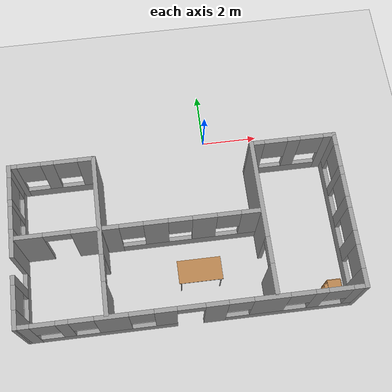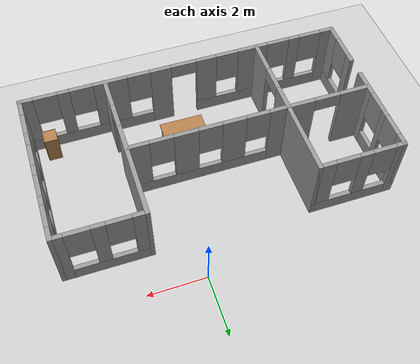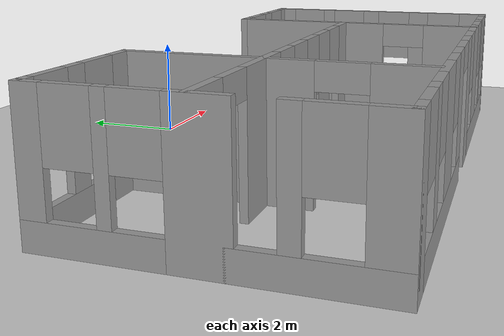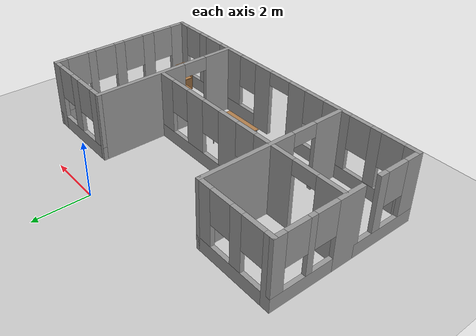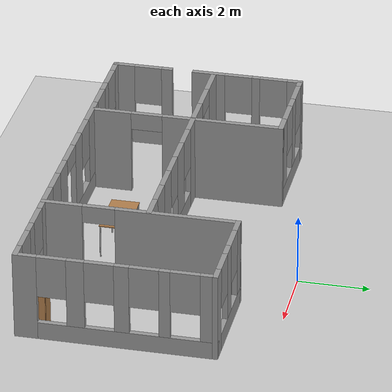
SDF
<sdf version="1.6">
 <world name="default">
  <model name="ground_plane">
   <pose>0 0 0 2.03541 -0 0</pose>
   <static>1</static>
   <link name="link">
    <collision name="collision">
     <geometry><plane><normal>0 0 1</normal><size>100 100</size></plane></geometry>
     <surface>
      <contact><collide_bitmask>65535</collide_bitmask></contact>
      <friction><ode><mu>100</mu><mu2>50</mu2></ode></friction>
     </surface>
    </collision>
    <visual name="visual">
     <cast_shadows>0</cast_shadows>
     <geometry><plane><normal>0 0 1</normal><size>100 100</size></plane></geometry>
     <material>
      <script><uri>file://media/materials/scripts/gazebo.material</uri><name>Gazebo/Grey</name></script>
     </material>
    </visual>
   </link>
  </model>
  <model name="office_2">
   <pose>-1.29 -3.995 0 0 -0 0</pose>
   <link name="Wall_0">
    <pose>-5.55 1.175 0 0 -0 1.5708</pose>
    <visual name="Wall_0_Visual_0">
     <pose>-1.13995 0 1.25 0 -0 0</pose>
     <geometry><box><size>0.970095 0.15 2.5</size></box></geometry>
     <material>
      <script><uri>file://media/materials/scripts/gazebo.material</uri><name>Gazebo/Grey</name></script>
      <ambient>1 1 1 1</ambient>
     </material>
     <meta><layer>0</layer></meta>
    </visual>
    <collision name="Wall_0_Collision_0">
     <geometry><box><size>0.970095 0.15 2.5</size></box></geometry>
     <pose>-1.13995 0 1.25 0 -0 0</pose>
    </collision>
    <visual name="Wall_0_Visual_1">
     <pose>0.485048 0 0.25 0 -0 0</pose>
     <geometry><box><size>2.2799 0.15 0.5</size></box></geometry>
     <material>
      <script><uri>file://media/materials/scripts/gazebo.material</uri><name>Gazebo/Grey</name></script>
      <ambient>1 1 1 1</ambient>
     </material>
     <meta><layer>0</layer></meta>
    </visual>
    <collision name="Wall_0_Collision_1">
     <geometry><box><size>2.2799 0.15 0.5</size></box></geometry>
     <pose>0.485048 0 0.25 0 -0 0</pose>
    </collision>
    <visual name="Wall_0_Visual_2">
     <pose>0.261163 0 1.5 0 -0 0</pose>
     <geometry><box><size>0.232136 0.15 2</size></box></geometry>
     <material>
      <script><uri>file://media/materials/scripts/gazebo.material</uri><name>Gazebo/Grey</name></script>
      <ambient>1 1 1 1</ambient>
     </material>
     <meta><layer>0</layer></meta>
    </visual>
    <collision name="Wall_0_Collision_2">
     <geometry><box><size>0.232136 0.15 2</size></box></geometry>
     <pose>0.261163 0 1.5 0 -0 0</pose>
    </collision>
    <visual name="Wall_0_Visual_3">
     <pose>1.40112 0 1.5 0 -0 0</pose>
     <geometry><box><size>0.447769 0.15 2</size></box></geometry>
     <material>
      <script><uri>file://media/materials/scripts/gazebo.material</uri><name>Gazebo/Grey</name></script>
      <ambient>1 1 1 1</ambient>
     </material>
     <meta><layer>0</layer></meta>
    </visual>
    <collision name="Wall_0_Collision_3">
     <geometry><box><size>0.447769 0.15 2</size></box></geometry>
     <pose>1.40112 0 1.5 0 -0 0</pose>
    </collision>
    <visual name="Wall_0_Visual_4">
     <pose>-0.254905 0 1.9 0 -0 0</pose>
     <geometry><box><size>0.8 0.15 1.2</size></box></geometry>
     <material>
      <script><uri>file://media/materials/scripts/gazebo.material</uri><name>Gazebo/Grey</name></script>
      <ambient>1 1 1 1</ambient>
     </material>
     <meta><layer>0</layer></meta>
    </visual>
    <collision name="Wall_0_Collision_4">
     <geometry><box><size>0.8 0.15 1.2</size></box></geometry>
     <pose>-0.254905 0 1.9 0 -0 0</pose>
    </collision>
    <visual name="Wall_0_Visual_5">
     <pose>0.777231 0 1.9 0 -0 0</pose>
     <geometry><box><size>0.8 0.15 1.2</size></box></geometry>
     <material>
      <script><uri>file://media/materials/scripts/gazebo.material</uri><name>Gazebo/Grey</name></script>
      <ambient>1 1 1 1</ambient>
     </material>
     <meta><layer>0</layer></meta>
    </visual>
    <collision name="Wall_0_Collision_5">
     <geometry><box><size>0.8 0.15 1.2</size></box></geometry>
     <pose>0.777231 0 1.9 0 -0 0</pose>
    </collision>
   </link>
   <link name="Wall_13">
    <pose>2.7 -0.05 0 0 0 -1.5708</pose>
    <visual name="Wall_13_Visual_0">
     <pose>-1.03023 0 1.25 0 -0 0</pose>
     <geometry><box><size>3.43955 0.15 2.5</size></box></geometry>
     <material>
      <script><uri>file://media/materials/scripts/gazebo.material</uri><name>Gazebo/Grey</name></script>
      <ambient>1 1 1 1</ambient>
     </material>
     <meta><layer>0</layer></meta>
    </visual>
    <collision name="Wall_13_Collision_0">
     <geometry><box><size>3.43955 0.15 2.5</size></box></geometry>
     <pose>-1.03023 0 1.25 0 -0 0</pose>
    </collision>
    <visual name="Wall_13_Visual_1">
     <pose>2.16977 0 1.25 0 -0 0</pose>
     <geometry><box><size>1.16045 0.15 2.5</size></box></geometry>
     <material>
      <script><uri>file://media/materials/scripts/gazebo.material</uri><name>Gazebo/Grey</name></script>
      <ambient>1 1 1 1</ambient>
     </material>
     <meta><layer>0</layer></meta>
    </visual>
    <collision name="Wall_13_Collision_1">
     <geometry><box><size>1.16045 0.15 2.5</size></box></geometry>
     <pose>2.16977 0 1.25 0 -0 0</pose>
    </collision>
    <visual name="Wall_13_Visual_2">
     <pose>1.13955 0 2.25 0 -0 0</pose>
     <geometry><box><size>0.9 0.15 0.5</size></box></geometry>
     <material>
      <script><uri>file://media/materials/scripts/gazebo.material</uri><name>Gazebo/Grey</name></script>
      <ambient>1 1 1 1</ambient>
     </material>
     <meta><layer>0</layer></meta>
    </visual>
    <collision name="Wall_13_Collision_2">
     <geometry><box><size>0.9 0.15 0.5</size></box></geometry>
     <pose>1.13955 0 2.25 0 -0 0</pose>
    </collision>
   </link>
   <link name="Wall_15">
    <pose>-4.125 2.725 0 0 -0 0</pose>
    <visual name="Wall_15_Visual_0">
     <pose>-1.32788 0 1.25 0 -0 0</pose>
     <geometry><box><size>0.344242 0.15 2.5</size></box></geometry>
     <material>
      <script><uri>file://media/materials/scripts/gazebo.material</uri><name>Gazebo/Grey</name></script>
      <ambient>1 1 1 1</ambient>
     </material>
     <meta><layer>0</layer></meta>
    </visual>
    <collision name="Wall_15_Collision_0">
     <geometry><box><size>0.344242 0.15 2.5</size></box></geometry>
     <pose>-1.32788 0 1.25 0 -0 0</pose>
    </collision>
    <visual name="Wall_15_Visual_1">
     <pose>0.172121 0 0.25 0 -0 0</pose>
     <geometry><box><size>2.65576 0.15 0.5</size></box></geometry>
     <material>
      <script><uri>file://media/materials/scripts/gazebo.material</uri><name>Gazebo/Grey</name></script>
      <ambient>1 1 1 1</ambient>
     </material>
     <meta><layer>0</layer></meta>
    </visual>
    <collision name="Wall_15_Collision_1">
     <geometry><box><size>2.65576 0.15 0.5</size></box></geometry>
     <pose>0.172121 0 0.25 0 -0 0</pose>
    </collision>
    <visual name="Wall_15_Visual_2">
     <pose>-0.13761 0 1.5 0 -0 0</pose>
     <geometry><box><size>0.436295 0.15 2</size></box></geometry>
     <material>
      <script><uri>file://media/materials/scripts/gazebo.material</uri><name>Gazebo/Grey</name></script>
      <ambient>1 1 1 1</ambient>
     </material>
     <meta><layer>0</layer></meta>
    </visual>
    <collision name="Wall_15_Collision_2">
     <geometry><box><size>0.436295 0.15 2</size></box></geometry>
     <pose>-0.13761 0 1.5 0 -0 0</pose>
    </collision>
    <visual name="Wall_15_Visual_3">
     <pose>1.19027 0 1.5 0 -0 0</pose>
     <geometry><box><size>0.619463 0.15 2</size></box></geometry>
     <material>
      <script><uri>file://media/materials/scripts/gazebo.material</uri><name>Gazebo/Grey</name></script>
      <ambient>1 1 1 1</ambient>
     </material>
     <meta><layer>0</layer></meta>
    </visual>
    <collision name="Wall_15_Collision_3">
     <geometry><box><size>0.619463 0.15 2</size></box></geometry>
     <pose>1.19027 0 1.5 0 -0 0</pose>
    </collision>
    <visual name="Wall_15_Visual_4">
     <pose>-0.755758 0 1.9 0 -0 0</pose>
     <geometry><box><size>0.8 0.15 1.2</size></box></geometry>
     <material>
      <script><uri>file://media/materials/scripts/gazebo.material</uri><name>Gazebo/Grey</name></script>
      <ambient>1 1 1 1</ambient>
     </material>
     <meta><layer>0</layer></meta>
    </visual>
    <collision name="Wall_15_Collision_4">
     <geometry><box><size>0.8 0.15 1.2</size></box></geometry>
     <pose>-0.755758 0 1.9 0 -0 0</pose>
    </collision>
    <visual name="Wall_15_Visual_5">
     <pose>0.480537 0 1.9 0 -0 0</pose>
     <geometry><box><size>0.8 0.15 1.2</size></box></geometry>
     <material>
      <script><uri>file://media/materials/scripts/gazebo.material</uri><name>Gazebo/Grey</name></script>
      <ambient>1 1 1 1</ambient>
     </material>
     <meta><layer>0</layer></meta>
    </visual>
    <collision name="Wall_15_Collision_5">
     <geometry><box><size>0.8 0.15 1.2</size></box></geometry>
     <pose>0.480537 0 1.9 0 -0 0</pose>
    </collision>
   </link>
   <link name="Wall_16">
    <pose>-2.7 0.05 0 0 0 -1.5708</pose>
    <visual name="Wall_16_Visual_0">
     <pose>-1.00858 0 1.25 0 -0 0</pose>
     <geometry><box><size>3.48284 0.15 2.5</size></box></geometry>
     <material>
      <script><uri>file://media/materials/scripts/gazebo.material</uri><name>Gazebo/Grey</name></script>
      <ambient>1 1 1 1</ambient>
     </material>
     <meta><layer>0</layer></meta>
    </visual>
    <collision name="Wall_16_Collision_0">
     <geometry><box><size>3.48284 0.15 2.5</size></box></geometry>
     <pose>-1.00858 0 1.25 0 -0 0</pose>
    </collision>
    <visual name="Wall_16_Visual_1">
     <pose>2.19142 0 1.25 0 -0 0</pose>
     <geometry><box><size>1.11716 0.15 2.5</size></box></geometry>
     <material>
      <script><uri>file://media/materials/scripts/gazebo.material</uri><name>Gazebo/Grey</name></script>
      <ambient>1 1 1 1</ambient>
     </material>
     <meta><layer>0</layer></meta>
    </visual>
    <collision name="Wall_16_Collision_1">
     <geometry><box><size>1.11716 0.15 2.5</size></box></geometry>
     <pose>2.19142 0 1.25 0 -0 0</pose>
    </collision>
    <visual name="Wall_16_Visual_2">
     <pose>1.18284 0 2.25 0 -0 0</pose>
     <geometry><box><size>0.9 0.15 0.5</size></box></geometry>
     <material>
      <script><uri>file://media/materials/scripts/gazebo.material</uri><name>Gazebo/Grey</name></script>
      <ambient>1 1 1 1</ambient>
     </material>
     <meta><layer>0</layer></meta>
    </visual>
    <collision name="Wall_16_Collision_2">
     <geometry><box><size>0.9 0.15 0.5</size></box></geometry>
     <pose>1.18284 0 2.25 0 -0 0</pose>
    </collision>
   </link>
   <link name="Wall_18">
    <pose>-0.016722 0.194197 0 0 -0 0</pose>
    <visual name="Wall_18_Visual_0">
     <pose>-2.39643 0 1.25 0 -0 0</pose>
     <geometry><box><size>0.707136 0.15 2.5</size></box></geometry>
     <material>
      <script><uri>file://media/materials/scripts/gazebo.material</uri><name>Gazebo/Grey</name></script>
      <ambient>1 1 1 1</ambient>
     </material>
     <meta><layer>0</layer></meta>
    </visual>
    <collision name="Wall_18_Collision_0">
     <geometry><box><size>0.707136 0.15 2.5</size></box></geometry>
     <pose>-2.39643 0 1.25 0 -0 0</pose>
    </collision>
    <visual name="Wall_18_Visual_1">
     <pose>0.353568 0 0.25 0 -0 0</pose>
     <geometry><box><size>4.79286 0.15 0.5</size></box></geometry>
     <material>
      <script><uri>file://media/materials/scripts/gazebo.material</uri><name>Gazebo/Grey</name></script>
      <ambient>1 1 1 1</ambient>
     </material>
     <meta><layer>0</layer></meta>
    </visual>
    <collision name="Wall_18_Collision_1">
     <geometry><box><size>4.79286 0.15 0.5</size></box></geometry>
     <pose>0.353568 0 0.25 0 -0 0</pose>
    </collision>
    <visual name="Wall_18_Visual_2">
     <pose>-0.8319 0 1.5 0 -0 0</pose>
     <geometry><box><size>0.821928 0.15 2</size></box></geometry>
     <material>
      <script><uri>file://media/materials/scripts/gazebo.material</uri><name>Gazebo/Grey</name></script>
      <ambient>1 1 1 1</ambient>
     </material>
     <meta><layer>0</layer></meta>
    </visual>
    <collision name="Wall_18_Collision_2">
     <geometry><box><size>0.821928 0.15 2</size></box></geometry>
     <pose>-0.8319 0 1.5 0 -0 0</pose>
    </collision>
    <visual name="Wall_18_Visual_3">
     <pose>0.790028 0 1.5 0 -0 0</pose>
     <geometry><box><size>0.821928 0.15 2</size></box></geometry>
     <material>
      <script><uri>file://media/materials/scripts/gazebo.material</uri><name>Gazebo/Grey</name></script>
      <ambient>1 1 1 1</ambient>
     </material>
     <meta><layer>0</layer></meta>
    </visual>
    <collision name="Wall_18_Collision_3">
     <geometry><box><size>0.821928 0.15 2</size></box></geometry>
     <pose>0.790028 0 1.5 0 -0 0</pose>
    </collision>
    <visual name="Wall_18_Visual_4">
     <pose>2.3755 0 1.5 0 -0 0</pose>
     <geometry><box><size>0.749008 0.15 2</size></box></geometry>
     <material>
      <script><uri>file://media/materials/scripts/gazebo.material</uri><name>Gazebo/Grey</name></script>
      <ambient>1 1 1 1</ambient>
     </material>
     <meta><layer>0</layer></meta>
    </visual>
    <collision name="Wall_18_Collision_4">
     <geometry><box><size>0.749008 0.15 2</size></box></geometry>
     <pose>2.3755 0 1.5 0 -0 0</pose>
    </collision>
    <visual name="Wall_18_Visual_5">
     <pose>-1.64286 0 1.9 0 -0 0</pose>
     <geometry><box><size>0.8 0.15 1.2</size></box></geometry>
     <material>
      <script><uri>file://media/materials/scripts/gazebo.material</uri><name>Gazebo/Grey</name></script>
      <ambient>1 1 1 1</ambient>
     </material>
     <meta><layer>0</layer></meta>
    </visual>
    <collision name="Wall_18_Collision_5">
     <geometry><box><size>0.8 0.15 1.2</size></box></geometry>
     <pose>-1.64286 0 1.9 0 -0 0</pose>
    </collision>
    <visual name="Wall_18_Visual_6">
     <pose>-0.020936 0 1.9 0 -0 0</pose>
     <geometry><box><size>0.8 0.15 1.2</size></box></geometry>
     <material>
      <script><uri>file://media/materials/scripts/gazebo.material</uri><name>Gazebo/Grey</name></script>
      <ambient>1 1 1 1</ambient>
     </material>
     <meta><layer>0</layer></meta>
    </visual>
    <collision name="Wall_18_Collision_6">
     <geometry><box><size>0.8 0.15 1.2</size></box></geometry>
     <pose>-0.020936 0 1.9 0 -0 0</pose>
    </collision>
    <visual name="Wall_18_Visual_7">
     <pose>1.60099 0 1.9 0 -0 0</pose>
     <geometry><box><size>0.8 0.15 1.2</size></box></geometry>
     <material>
      <script><uri>file://media/materials/scripts/gazebo.material</uri><name>Gazebo/Grey</name></script>
      <ambient>1 1 1 1</ambient>
     </material>
     <meta><layer>0</layer></meta>
    </visual>
    <collision name="Wall_18_Collision_7">
     <geometry><box><size>0.8 0.15 1.2</size></box></geometry>
     <pose>1.60099 0 1.9 0 -0 0</pose>
    </collision>
   </link>
   <link name="Wall_2">
    <pose>-5.55 -1.55 0 0 0 -1.5708</pose>
    <visual name="Wall_2_Visual_0">
     <pose>0 0 0.25 0 -0 0</pose>
     <geometry><box><size>2.5 0.15 0.5</size></box></geometry>
     <material>
      <script><uri>file://media/materials/scripts/gazebo.material</uri><name>Gazebo/Grey</name></script>
      <ambient>1 1 1 1</ambient>
     </material>
     <meta><layer>0</layer></meta>
    </visual>
    <collision name="Wall_2_Collision_0">
     <geometry><box><size>2.5 0.15 0.5</size></box></geometry>
     <pose>0 0 0.25 0 -0 0</pose>
    </collision>
    <visual name="Wall_2_Visual_1">
     <pose>-0.354783 0 1.5 0 -0 0</pose>
     <geometry><box><size>0.322873 0.15 2</size></box></geometry>
     <material>
      <script><uri>file://media/materials/scripts/gazebo.material</uri><name>Gazebo/Grey</name></script>
      <ambient>1 1 1 1</ambient>
     </material>
     <meta><layer>0</layer></meta>
    </visual>
    <collision name="Wall_2_Collision_1">
     <geometry><box><size>0.322873 0.15 2</size></box></geometry>
     <pose>-0.354783 0 1.5 0 -0 0</pose>
    </collision>
    <visual name="Wall_2_Visual_2">
     <pose>0.928327 0 1.5 0 -0 0</pose>
     <geometry><box><size>0.643346 0.15 2</size></box></geometry>
     <material>
      <script><uri>file://media/materials/scripts/gazebo.material</uri><name>Gazebo/Grey</name></script>
      <ambient>1 1 1 1</ambient>
     </material>
     <meta><layer>0</layer></meta>
    </visual>
    <collision name="Wall_2_Collision_2">
     <geometry><box><size>0.643346 0.15 2</size></box></geometry>
     <pose>0.928327 0 1.5 0 -0 0</pose>
    </collision>
    <visual name="Wall_2_Visual_3">
     <pose>0.206654 0 1.9 0 -0 0</pose>
     <geometry><box><size>0.8 0.15 1.2</size></box></geometry>
     <material>
      <script><uri>file://media/materials/scripts/gazebo.material</uri><name>Gazebo/Grey</name></script>
      <ambient>1 1 1 1</ambient>
     </material>
     <meta><layer>0</layer></meta>
    </visual>
    <collision name="Wall_2_Collision_3">
     <geometry><box><size>0.8 0.15 1.2</size></box></geometry>
     <pose>0.206654 0 1.9 0 -0 0</pose>
    </collision>
   </link>
   <link name="Wall_20">
    <pose>-4.11672 0.194197 0 0 -0 0</pose>
    <visual name="Wall_20_Visual_0">
     <pose>-0.960043 0 1.25 0 -0 0</pose>
     <geometry><box><size>1.07991 0.15 2.5</size></box></geometry>
     <material>
      <script><uri>file://media/materials/scripts/gazebo.material</uri><name>Gazebo/Grey</name></script>
      <ambient>1 1 1 1</ambient>
     </material>
     <meta><layer>0</layer></meta>
    </visual>
    <collision name="Wall_20_Collision_0">
     <geometry><box><size>1.07991 0.15 2.5</size></box></geometry>
     <pose>-0.960043 0 1.25 0 -0 0</pose>
    </collision>
    <visual name="Wall_20_Visual_1">
     <pose>0.989957 0 1.25 0 -0 0</pose>
     <geometry><box><size>1.02008 0.15 2.5</size></box></geometry>
     <material>
      <script><uri>file://media/materials/scripts/gazebo.material</uri><name>Gazebo/Grey</name></script>
      <ambient>1 1 1 1</ambient>
     </material>
     <meta><layer>0</layer></meta>
    </visual>
    <collision name="Wall_20_Collision_1">
     <geometry><box><size>1.02008 0.15 2.5</size></box></geometry>
     <pose>0.989957 0 1.25 0 -0 0</pose>
    </collision>
    <visual name="Wall_20_Visual_2">
     <pose>0.029915 0 2.25 0 -0 0</pose>
     <geometry><box><size>0.9 0.15 0.5</size></box></geometry>
     <material>
      <script><uri>file://media/materials/scripts/gazebo.material</uri><name>Gazebo/Grey</name></script>
      <ambient>1 1 1 1</ambient>
     </material>
     <meta><layer>0</layer></meta>
    </visual>
    <collision name="Wall_20_Collision_2">
     <geometry><box><size>0.9 0.15 0.5</size></box></geometry>
     <pose>0.029915 0 2.25 0 -0 0</pose>
    </collision>
   </link>
   <link name="Wall_3">
    <pose>0 -2.725 0 0 -0 0</pose>
    <visual name="Wall_3_Visual_0">
     <pose>-5.36214 0 1.25 0 -0 0</pose>
     <geometry><box><size>0.525716 0.15 2.5</size></box></geometry>
     <material>
      <script><uri>file://media/materials/scripts/gazebo.material</uri><name>Gazebo/Grey</name></script>
      <ambient>1 1 1 1</ambient>
     </material>
     <meta><layer>0</layer></meta>
    </visual>
    <collision name="Wall_3_Collision_0">
     <geometry><box><size>0.525716 0.15 2.5</size></box></geometry>
     <pose>-5.36214 0 1.25 0 -0 0</pose>
    </collision>
    <visual name="Wall_3_Visual_1">
     <pose>0.781293 0 1.25 0 -0 0</pose>
     <geometry><box><size>0.737902 0.15 2.5</size></box></geometry>
     <material>
      <script><uri>file://media/materials/scripts/gazebo.material</uri><name>Gazebo/Grey</name></script>
      <ambient>1 1 1 1</ambient>
     </material>
     <meta><layer>0</layer></meta>
    </visual>
    <collision name="Wall_3_Collision_1">
     <geometry><box><size>0.737902 0.15 2.5</size></box></geometry>
     <pose>0.781293 0 1.25 0 -0 0</pose>
    </collision>
    <visual name="Wall_3_Visual_2">
     <pose>-2.79347 0 0.25 0 -0 0</pose>
     <geometry><box><size>4.61163 0.15 0.5</size></box></geometry>
     <material>
      <script><uri>file://media/materials/scripts/gazebo.material</uri><name>Gazebo/Grey</name></script>
      <ambient>1 1 1 1</ambient>
     </material>
     <meta><layer>0</layer></meta>
    </visual>
    <collision name="Wall_3_Collision_2">
     <geometry><box><size>4.61163 0.15 0.5</size></box></geometry>
     <pose>-2.79347 0 0.25 0 -0 0</pose>
    </collision>
    <visual name="Wall_3_Visual_3">
     <pose>3.38762 0 0.25 0 -0 0</pose>
     <geometry><box><size>4.47476 0.15 0.5</size></box></geometry>
     <material>
      <script><uri>file://media/materials/scripts/gazebo.material</uri><name>Gazebo/Grey</name></script>
      <ambient>1 1 1 1</ambient>
     </material>
     <meta><layer>0</layer></meta>
    </visual>
    <collision name="Wall_3_Collision_3">
     <geometry><box><size>4.47476 0.15 0.5</size></box></geometry>
     <pose>3.38762 0 0.25 0 -0 0</pose>
    </collision>
    <visual name="Wall_3_Visual_4">
     <pose>-4.09815 0 1.5 0 -0 0</pose>
     <geometry><box><size>0.402269 0.15 2</size></box></geometry>
     <material>
      <script><uri>file://media/materials/scripts/gazebo.material</uri><name>Gazebo/Grey</name></script>
      <ambient>1 1 1 1</ambient>
     </material>
     <meta><layer>0</layer></meta>
    </visual>
    <collision name="Wall_3_Collision_4">
     <geometry><box><size>0.402269 0.15 2</size></box></geometry>
     <pose>-4.09815 0 1.5 0 -0 0</pose>
    </collision>
    <visual name="Wall_3_Visual_5">
     <pose>-2.55562 0 1.5 0 -0 0</pose>
     <geometry><box><size>1.0828 0.15 2</size></box></geometry>
     <material>
      <script><uri>file://media/materials/scripts/gazebo.material</uri><name>Gazebo/Grey</name></script>
      <ambient>1 1 1 1</ambient>
     </material>
     <meta><layer>0</layer></meta>
    </visual>
    <collision name="Wall_3_Collision_5">
     <geometry><box><size>1.0828 0.15 2</size></box></geometry>
     <pose>-2.55562 0 1.5 0 -0 0</pose>
    </collision>
    <visual name="Wall_3_Visual_6">
     <pose>-0.850938 0 1.5 0 -0 0</pose>
     <geometry><box><size>0.72656 0.15 2</size></box></geometry>
     <material>
      <script><uri>file://media/materials/scripts/gazebo.material</uri><name>Gazebo/Grey</name></script>
      <ambient>1 1 1 1</ambient>
     </material>
     <meta><layer>0</layer></meta>
    </visual>
    <collision name="Wall_3_Collision_6">
     <geometry><box><size>0.72656 0.15 2</size></box></geometry>
     <pose>-0.850938 0 1.5 0 -0 0</pose>
    </collision>
    <visual name="Wall_3_Visual_7">
     <pose>-0.850938 0 1.5 0 -0 0</pose>
     <geometry><box><size>0.72656 0.15 2</size></box></geometry>
     <material>
      <script><uri>file://media/materials/scripts/gazebo.material</uri><name>Gazebo/Grey</name></script>
      <ambient>1 1 1 1</ambient>
     </material>
     <meta><layer>0</layer></meta>
    </visual>
    <collision name="Wall_3_Collision_7">
     <geometry><box><size>0.72656 0.15 2</size></box></geometry>
     <pose>-0.850938 0 1.5 0 -0 0</pose>
    </collision>
    <visual name="Wall_3_Visual_8">
     <pose>2.53134 0 1.5 0 -0 0</pose>
     <geometry><box><size>1.16219 0.15 2</size></box></geometry>
     <material>
      <script><uri>file://media/materials/scripts/gazebo.material</uri><name>Gazebo/Grey</name></script>
      <ambient>1 1 1 1</ambient>
     </material>
     <meta><layer>0</layer></meta>
    </visual>
    <collision name="Wall_3_Collision_8">
     <geometry><box><size>1.16219 0.15 2</size></box></geometry>
     <pose>2.53134 0 1.5 0 -0 0</pose>
    </collision>
    <visual name="Wall_3_Visual_9">
     <pose>4.11924 0 1.5 0 -0 0</pose>
     <geometry><box><size>0.41361 0.15 2</size></box></geometry>
     <material>
      <script><uri>file://media/materials/scripts/gazebo.material</uri><name>Gazebo/Grey</name></script>
      <ambient>1 1 1 1</ambient>
     </material>
     <meta><layer>0</layer></meta>
    </visual>
    <collision name="Wall_3_Collision_9">
     <geometry><box><size>0.41361 0.15 2</size></box></geometry>
     <pose>4.11924 0 1.5 0 -0 0</pose>
    </collision>
    <visual name="Wall_3_Visual_10">
     <pose>5.37552 0 1.5 0 -0 0</pose>
     <geometry><box><size>0.498953 0.15 2</size></box></geometry>
     <material>
      <script><uri>file://media/materials/scripts/gazebo.material</uri><name>Gazebo/Grey</name></script>
      <ambient>1 1 1 1</ambient>
     </material>
     <meta><layer>0</layer></meta>
    </visual>
    <collision name="Wall_3_Collision_10">
     <geometry><box><size>0.498953 0.15 2</size></box></geometry>
     <pose>5.37552 0 1.5 0 -0 0</pose>
    </collision>
    <visual name="Wall_3_Visual_11">
     <pose>-4.69928 0 1.9 0 -0 0</pose>
     <geometry><box><size>0.8 0.15 1.2</size></box></geometry>
     <material>
      <script><uri>file://media/materials/scripts/gazebo.material</uri><name>Gazebo/Grey</name></script>
      <ambient>1 1 1 1</ambient>
     </material>
     <meta><layer>0</layer></meta>
    </visual>
    <collision name="Wall_3_Collision_11">
     <geometry><box><size>0.8 0.15 1.2</size></box></geometry>
     <pose>-4.69928 0 1.9 0 -0 0</pose>
    </collision>
    <visual name="Wall_3_Visual_12">
     <pose>1.55024 0 1.9 0 -0 0</pose>
     <geometry><box><size>0.8 0.15 1.2</size></box></geometry>
     <material>
      <script><uri>file://media/materials/scripts/gazebo.material</uri><name>Gazebo/Grey</name></script>
      <ambient>1 1 1 1</ambient>
     </material>
     <meta><layer>0</layer></meta>
    </visual>
    <collision name="Wall_3_Collision_12">
     <geometry><box><size>0.8 0.15 1.2</size></box></geometry>
     <pose>1.55024 0 1.9 0 -0 0</pose>
    </collision>
    <visual name="Wall_3_Visual_13">
     <pose>-3.49702 0 1.9 0 -0 0</pose>
     <geometry><box><size>0.8 0.15 1.2</size></box></geometry>
     <material>
      <script><uri>file://media/materials/scripts/gazebo.material</uri><name>Gazebo/Grey</name></script>
      <ambient>1 1 1 1</ambient>
     </material>
     <meta><layer>0</layer></meta>
    </visual>
    <collision name="Wall_3_Collision_13">
     <geometry><box><size>0.8 0.15 1.2</size></box></geometry>
     <pose>-3.49702 0 1.9 0 -0 0</pose>
    </collision>
    <visual name="Wall_3_Visual_14">
     <pose>-1.61422 0 1.9 0 -0 0</pose>
     <geometry><box><size>0.8 0.15 1.2</size></box></geometry>
     <material>
      <script><uri>file://media/materials/scripts/gazebo.material</uri><name>Gazebo/Grey</name></script>
      <ambient>1 1 1 1</ambient>
     </material>
     <meta><layer>0</layer></meta>
    </visual>
    <collision name="Wall_3_Collision_14">
     <geometry><box><size>0.8 0.15 1.2</size></box></geometry>
     <pose>-1.61422 0 1.9 0 -0 0</pose>
    </collision>
    <visual name="Wall_3_Visual_15">
     <pose>3.51244 0 1.9 0 -0 0</pose>
     <geometry><box><size>0.8 0.15 1.2</size></box></geometry>
     <material>
      <script><uri>file://media/materials/scripts/gazebo.material</uri><name>Gazebo/Grey</name></script>
      <ambient>1 1 1 1</ambient>
     </material>
     <meta><layer>0</layer></meta>
    </visual>
    <collision name="Wall_3_Collision_15">
     <geometry><box><size>0.8 0.15 1.2</size></box></geometry>
     <pose>3.51244 0 1.9 0 -0 0</pose>
    </collision>
    <visual name="Wall_3_Visual_16">
     <pose>4.72605 0 1.9 0 -0 0</pose>
     <geometry><box><size>0.8 0.15 1.2</size></box></geometry>
     <material>
      <script><uri>file://media/materials/scripts/gazebo.material</uri><name>Gazebo/Grey</name></script>
      <ambient>1 1 1 1</ambient>
     </material>
     <meta><layer>0</layer></meta>
    </visual>
    <collision name="Wall_3_Collision_16">
     <geometry><box><size>0.8 0.15 1.2</size></box></geometry>
     <pose>4.72605 0 1.9 0 -0 0</pose>
    </collision>
    <visual name="Wall_3_Visual_17">
     <pose>-0.037658 0 2.25 0 -0 0</pose>
     <geometry><box><size>0.9 0.15 0.5</size></box></geometry>
     <material>
      <script><uri>file://media/materials/scripts/gazebo.material</uri><name>Gazebo/Grey</name></script>
      <ambient>1 1 1 1</ambient>
     </material>
     <meta><layer>0</layer></meta>
    </visual>
    <collision name="Wall_3_Collision_17">
     <geometry><box><size>0.9 0.15 0.5</size></box></geometry>
     <pose>-0.037658 0 2.25 0 -0 0</pose>
    </collision>
    <visual name="Wall_3_Visual_18">
     <pose>-0.037658 0 2.25 0 -0 0</pose>
     <geometry><box><size>0.9 0.15 0.5</size></box></geometry>
     <material>
      <script><uri>file://media/materials/scripts/gazebo.material</uri><name>Gazebo/Grey</name></script>
      <ambient>1 1 1 1</ambient>
     </material>
     <meta><layer>0</layer></meta>
    </visual>
    <collision name="Wall_3_Collision_18">
     <geometry><box><size>0.9 0.15 0.5</size></box></geometry>
     <pose>-0.037658 0 2.25 0 -0 0</pose>
    </collision>
   </link>
   <link name="Wall_4">
    <pose>5.55 -0.05 0 0 -0 1.5708</pose>
    <visual name="Wall_4_Visual_0">
     <pose>-2.42833 0 1.25 0 -0 0</pose>
     <geometry><box><size>0.643346 0.15 2.5</size></box></geometry>
     <material>
      <script><uri>file://media/materials/scripts/gazebo.material</uri><name>Gazebo/Grey</name></script>
      <ambient>1 1 1 1</ambient>
     </material>
     <meta><layer>0</layer></meta>
    </visual>
    <collision name="Wall_4_Collision_0">
     <geometry><box><size>0.643346 0.15 2.5</size></box></geometry>
     <pose>-2.42833 0 1.25 0 -0 0</pose>
    </collision>
    <visual name="Wall_4_Visual_1">
     <pose>0.321673 0 0.25 0 -0 0</pose>
     <geometry><box><size>4.85665 0.15 0.5</size></box></geometry>
     <material>
      <script><uri>file://media/materials/scripts/gazebo.material</uri><name>Gazebo/Grey</name></script>
      <ambient>1 1 1 1</ambient>
     </material>
     <meta><layer>0</layer></meta>
    </visual>
    <collision name="Wall_4_Collision_1">
     <geometry><box><size>4.85665 0.15 0.5</size></box></geometry>
     <pose>0.321673 0 0.25 0 -0 0</pose>
    </collision>
    <visual name="Wall_4_Visual_2">
     <pose>-1.06582 0 1.5 0 -0 0</pose>
     <geometry><box><size>0.481663 0.15 2</size></box></geometry>
     <material>
      <script><uri>file://media/materials/scripts/gazebo.material</uri><name>Gazebo/Grey</name></script>
      <ambient>1 1 1 1</ambient>
     </material>
     <meta><layer>0</layer></meta>
    </visual>
    <collision name="Wall_4_Collision_2">
     <geometry><box><size>0.481663 0.15 2</size></box></geometry>
     <pose>-1.06582 0 1.5 0 -0 0</pose>
    </collision>
    <visual name="Wall_4_Visual_3">
     <pose>0.176144 0 1.5 0 -0 0</pose>
     <geometry><box><size>0.402269 0.15 2</size></box></geometry>
     <material>
      <script><uri>file://media/materials/scripts/gazebo.material</uri><name>Gazebo/Grey</name></script>
      <ambient>1 1 1 1</ambient>
     </material>
     <meta><layer>0</layer></meta>
    </visual>
    <collision name="Wall_4_Collision_3">
     <geometry><box><size>0.402269 0.15 2</size></box></geometry>
     <pose>0.176144 0 1.5 0 -0 0</pose>
    </collision>
    <visual name="Wall_4_Visual_4">
     <pose>1.32737 0 1.5 0 -0 0</pose>
     <geometry><box><size>0.300189 0.15 2</size></box></geometry>
     <material>
      <script><uri>file://media/materials/scripts/gazebo.material</uri><name>Gazebo/Grey</name></script>
      <ambient>1 1 1 1</ambient>
     </material>
     <meta><layer>0</layer></meta>
    </visual>
    <collision name="Wall_4_Collision_4">
     <geometry><box><size>0.300189 0.15 2</size></box></geometry>
     <pose>1.32737 0 1.5 0 -0 0</pose>
    </collision>
    <visual name="Wall_4_Visual_5">
     <pose>2.51373 0 1.5 0 -0 0</pose>
     <geometry><box><size>0.472532 0.15 2</size></box></geometry>
     <material>
      <script><uri>file://media/materials/scripts/gazebo.material</uri><name>Gazebo/Grey</name></script>
      <ambient>1 1 1 1</ambient>
     </material>
     <meta><layer>0</layer></meta>
    </visual>
    <collision name="Wall_4_Collision_5">
     <geometry><box><size>0.472532 0.15 2</size></box></geometry>
     <pose>2.51373 0 1.5 0 -0 0</pose>
    </collision>
    <visual name="Wall_4_Visual_6">
     <pose>-1.70665 0 1.9 0 -0 0</pose>
     <geometry><box><size>0.8 0.15 1.2</size></box></geometry>
     <material>
      <script><uri>file://media/materials/scripts/gazebo.material</uri><name>Gazebo/Grey</name></script>
      <ambient>1 1 1 1</ambient>
     </material>
     <meta><layer>0</layer></meta>
    </visual>
    <collision name="Wall_4_Collision_6">
     <geometry><box><size>0.8 0.15 1.2</size></box></geometry>
     <pose>-1.70665 0 1.9 0 -0 0</pose>
    </collision>
    <visual name="Wall_4_Visual_7">
     <pose>-0.42499 0 1.9 0 -0 0</pose>
     <geometry><box><size>0.8 0.15 1.2</size></box></geometry>
     <material>
      <script><uri>file://media/materials/scripts/gazebo.material</uri><name>Gazebo/Grey</name></script>
      <ambient>1 1 1 1</ambient>
     </material>
     <meta><layer>0</layer></meta>
    </visual>
    <collision name="Wall_4_Collision_7">
     <geometry><box><size>0.8 0.15 1.2</size></box></geometry>
     <pose>-0.42499 0 1.9 0 -0 0</pose>
    </collision>
    <visual name="Wall_4_Visual_8">
     <pose>0.777278 0 1.9 0 -0 0</pose>
     <geometry><box><size>0.8 0.15 1.2</size></box></geometry>
     <material>
      <script><uri>file://media/materials/scripts/gazebo.material</uri><name>Gazebo/Grey</name></script>
      <ambient>1 1 1 1</ambient>
     </material>
     <meta><layer>0</layer></meta>
    </visual>
    <collision name="Wall_4_Collision_8">
     <geometry><box><size>0.8 0.15 1.2</size></box></geometry>
     <pose>0.777278 0 1.9 0 -0 0</pose>
    </collision>
    <visual name="Wall_4_Visual_9">
     <pose>1.87747 0 1.9 0 -0 0</pose>
     <geometry><box><size>0.8 0.15 1.2</size></box></geometry>
     <material>
      <script><uri>file://media/materials/scripts/gazebo.material</uri><name>Gazebo/Grey</name></script>
      <ambient>1 1 1 1</ambient>
     </material>
     <meta><layer>0</layer></meta>
    </visual>
    <collision name="Wall_4_Collision_9">
     <geometry><box><size>0.8 0.15 1.2</size></box></geometry>
     <pose>1.87747 0 1.9 0 -0 0</pose>
    </collision>
   </link>
   <link name="Wall_5">
    <pose>4.125 2.625 0 0 -0 3.14159</pose>
    <visual name="Wall_5_Visual_0">
     <pose>-1.27888 0 1.25 0 -0 0</pose>
     <geometry><box><size>0.442242 0.15 2.5</size></box></geometry>
     <material>
      <script><uri>file://media/materials/scripts/gazebo.material</uri><name>Gazebo/Grey</name></script>
      <ambient>1 1 1 1</ambient>
     </material>
     <meta><layer>0</layer></meta>
    </visual>
    <collision name="Wall_5_Collision_0">
     <geometry><box><size>0.442242 0.15 2.5</size></box></geometry>
     <pose>-1.27888 0 1.25 0 -0 0</pose>
    </collision>
    <visual name="Wall_5_Visual_1">
     <pose>0.221121 0 0.25 0 -0 0</pose>
     <geometry><box><size>2.55776 0.15 0.5</size></box></geometry>
     <material>
      <script><uri>file://media/materials/scripts/gazebo.material</uri><name>Gazebo/Grey</name></script>
      <ambient>1 1 1 1</ambient>
     </material>
     <meta><layer>0</layer></meta>
    </visual>
    <collision name="Wall_5_Collision_1">
     <geometry><box><size>2.55776 0.15 0.5</size></box></geometry>
     <pose>0.221121 0 0.25 0 -0 0</pose>
    </collision>
    <visual name="Wall_5_Visual_2">
     <pose>-0.039611 0 1.5 0 -0 0</pose>
     <geometry><box><size>0.436295 0.15 2</size></box></geometry>
     <material>
      <script><uri>file://media/materials/scripts/gazebo.material</uri><name>Gazebo/Grey</name></script>
      <ambient>1 1 1 1</ambient>
     </material>
     <meta><layer>0</layer></meta>
    </visual>
    <collision name="Wall_5_Collision_2">
     <geometry><box><size>0.436295 0.15 2</size></box></geometry>
     <pose>-0.039611 0 1.5 0 -0 0</pose>
    </collision>
    <visual name="Wall_5_Visual_3">
     <pose>1.23927 0 1.5 0 -0 0</pose>
     <geometry><box><size>0.521463 0.15 2</size></box></geometry>
     <material>
      <script><uri>file://media/materials/scripts/gazebo.material</uri><name>Gazebo/Grey</name></script>
      <ambient>1 1 1 1</ambient>
     </material>
     <meta><layer>0</layer></meta>
    </visual>
    <collision name="Wall_5_Collision_3">
     <geometry><box><size>0.521463 0.15 2</size></box></geometry>
     <pose>1.23927 0 1.5 0 -0 0</pose>
    </collision>
    <visual name="Wall_5_Visual_4">
     <pose>-0.657758 0 1.9 0 -0 0</pose>
     <geometry><box><size>0.8 0.15 1.2</size></box></geometry>
     <material>
      <script><uri>file://media/materials/scripts/gazebo.material</uri><name>Gazebo/Grey</name></script>
      <ambient>1 1 1 1</ambient>
     </material>
     <meta><layer>0</layer></meta>
    </visual>
    <collision name="Wall_5_Collision_4">
     <geometry><box><size>0.8 0.15 1.2</size></box></geometry>
     <pose>-0.657758 0 1.9 0 -0 0</pose>
    </collision>
    <visual name="Wall_5_Visual_5">
     <pose>0.578537 0 1.9 0 -0 0</pose>
     <geometry><box><size>0.8 0.15 1.2</size></box></geometry>
     <material>
      <script><uri>file://media/materials/scripts/gazebo.material</uri><name>Gazebo/Grey</name></script>
      <ambient>1 1 1 1</ambient>
     </material>
     <meta><layer>0</layer></meta>
    </visual>
    <collision name="Wall_5_Collision_5">
     <geometry><box><size>0.8 0.15 1.2</size></box></geometry>
     <pose>0.578537 0 1.9 0 -0 0</pose>
    </collision>
   </link>
   <static>1</static>
  </model>
  <model name="cabinet">
   <static>1</static>
   <link name="cabinet_bottom_plate">
    <inertial>
     <pose>0 0 -1 0 -0 0</pose>
     <inertia><ixx>2.05</ixx><ixy>0</ixy><ixz>0</ixz><iyy>2.05</iyy><iyz>0</iyz><izz>2.05</izz></inertia>
     <mass>25</mass>
    </inertial>
    <collision name="cabinet_bottom_plate_geom">
     <pose>0 0 0.01 0 -0 0</pose>
     <geometry><box><size>0.45 0.45 0.02</size></box></geometry>
    </collision>
    <visual name="cabinet_bottom_plate_geom_visual">
     <pose>0 0 0.01 0 -0 0</pose>
     <geometry><box><size>0.45 0.45 0.02</size></box></geometry>
     <material>
      <script><uri>file://media/materials/scripts/gazebo.material</uri><name>Gazebo/Wood</name></script>
     </material>
    </visual>
    <collision name="cabinet_bottom_plate_geom_cabinet_back_plate">
     <pose>0.235 0 0.51 0 -0 0</pose>
     <geometry><box><size>0.02 0.45 1.02</size></box></geometry>
    </collision>
    <visual name="cabinet_bottom_plate_geom_cabinet_back_plate_visual">
     <pose>0.235 0 0.51 0 -0 0</pose>
     <geometry><box><size>0.02 0.45 1.02</size></box></geometry>
     <material>
      <script><uri>file://media/materials/scripts/gazebo.material</uri><name>Gazebo/Wood</name></script>
     </material>
    </visual>
    <collision name="cabinet_bottom_plate_geom_cabinet_left_plate">
     <pose>0 0.235 0.51 0 -0 0</pose>
     <geometry><box><size>0.45 0.02 1.02</size></box></geometry>
    </collision>
    <visual name="cabinet_bottom_plate_geom_cabinet_left_plate_visual">
     <pose>0 0.235 0.51 0 -0 0</pose>
     <geometry><box><size>0.45 0.02 1.02</size></box></geometry>
     <material>
      <script><uri>file://media/materials/scripts/gazebo.material</uri><name>Gazebo/Wood</name></script>
     </material>
    </visual>
    <collision name="cabinet_bottom_plate_geom_cabinet_middle_plate">
     <pose>0 0 0.51 0 -0 0</pose>
     <geometry><box><size>0.45 0.45 0.02</size></box></geometry>
    </collision>
    <visual name="cabinet_bottom_plate_geom_cabinet_middle_plate_visual">
     <pose>0 0 0.51 0 -0 0</pose>
     <geometry><box><size>0.45 0.45 0.02</size></box></geometry>
     <material>
      <script><uri>file://media/materials/scripts/gazebo.material</uri><name>Gazebo/Wood</name></script>
     </material>
    </visual>
    <collision name="cabinet_bottom_plate_geom_cabinet_right_plate">
     <pose>0 -0.235 0.51 0 -0 0</pose>
     <geometry><box><size>0.45 0.02 1.02</size></box></geometry>
    </collision>
    <visual name="cabinet_bottom_plate_geom_cabinet_right_plate_visual">
     <pose>0 -0.235 0.51 0 -0 0</pose>
     <geometry><box><size>0.45 0.02 1.02</size></box></geometry>
     <material>
      <script><uri>file://media/materials/scripts/gazebo.material</uri><name>Gazebo/Wood</name></script>
     </material>
    </visual>
    <collision name="cabinet_bottom_plate_geom_cabinet_top_plate">
     <pose>0 0 1.01 0 -0 0</pose>
     <geometry><box><size>0.45 0.45 0.02</size></box></geometry>
    </collision>
    <visual name="cabinet_bottom_plate_geom_cabinet_top_plate_visual">
     <pose>0 0 1.01 0 -0 0</pose>
     <geometry><box><size>0.45 0.45 0.02</size></box></geometry>
     <material>
      <script><uri>file://media/materials/scripts/gazebo.material</uri><name>Gazebo/Wood</name></script>
     </material>
    </visual>
   </link>
   <pose>3.61937 -6.29077 0 0 -0 0</pose>
  </model>
  <model name="table_1">
   <static>1</static>
   <link name="link">
    <collision name="surface">
     <pose>0 0 1 0 -0 0</pose>
     <geometry><box><size>1.5 0.8 0.03</size></box></geometry>
     <surface><friction><ode><mu>0.6</mu><mu2>0.6</mu2></ode></friction></surface>
    </collision>
    <visual name="visual1">
     <pose>0 0 1 0 -0 0</pose>
     <geometry><box><size>1.5 0.8 0.03</size></box></geometry>
     <material>
      <script><uri>file://media/materials/scripts/gazebo.material</uri><name>Gazebo/Wood</name></script>
     </material>
    </visual>
    <collision name="front_left_leg">
     <pose>0.68 0.38 0.5 0 -0 0</pose>
     <geometry><cylinder><radius>0.02</radius><length>1</length></cylinder></geometry>
    </collision>
    <visual name="front_left_leg">
     <pose>0.68 0.38 0.5 0 -0 0</pose>
     <geometry><cylinder><radius>0.02</radius><length>1</length></cylinder></geometry>
     <material>
      <script><uri>file://media/materials/scripts/gazebo.material</uri><name>Gazebo/Grey</name></script>
     </material>
    </visual>
    <collision name="front_right_leg">
     <pose>0.68 -0.38 0.5 0 -0 0</pose>
     <geometry><cylinder><radius>0.02</radius><length>1</length></cylinder></geometry>
    </collision>
    <visual name="front_right_leg">
     <pose>0.68 -0.38 0.5 0 -0 0</pose>
     <geometry><cylinder><radius>0.02</radius><length>1</length></cylinder></geometry>
     <material>
      <script><uri>file://media/materials/scripts/gazebo.material</uri><name>Gazebo/Grey</name></script>
     </material>
    </visual>
    <collision name="back_right_leg">
     <pose>-0.68 -0.38 0.5 0 -0 0</pose>
     <geometry><cylinder><radius>0.02</radius><length>1</length></cylinder></geometry>
    </collision>
    <visual name="back_right_leg">
     <pose>-0.68 -0.38 0.5 0 -0 0</pose>
     <geometry><cylinder><radius>0.02</radius><length>1</length></cylinder></geometry>
     <material>
      <script><uri>file://media/materials/scripts/gazebo.material</uri><name>Gazebo/Grey</name></script>
     </material>
    </visual>
    <collision name="back_left_leg">
     <pose>-0.68 0.38 0.5 0 -0 0</pose>
     <geometry><cylinder><radius>0.02</radius><length>1</length></cylinder></geometry>
    </collision>
    <visual name="back_left_leg">
     <pose>-0.68 0.38 0.5 0 -0 0</pose>
     <geometry><cylinder><radius>0.02</radius><length>1</length></cylinder></geometry>
     <material>
      <script><uri>file://media/materials/scripts/gazebo.material</uri><name>Gazebo/Grey</name></script>
     </material>
    </visual>
   </link>
   <pose>-0.824633 -5.17792 0 0 -0 0</pose>
  </model>
 </world>
</sdf>
